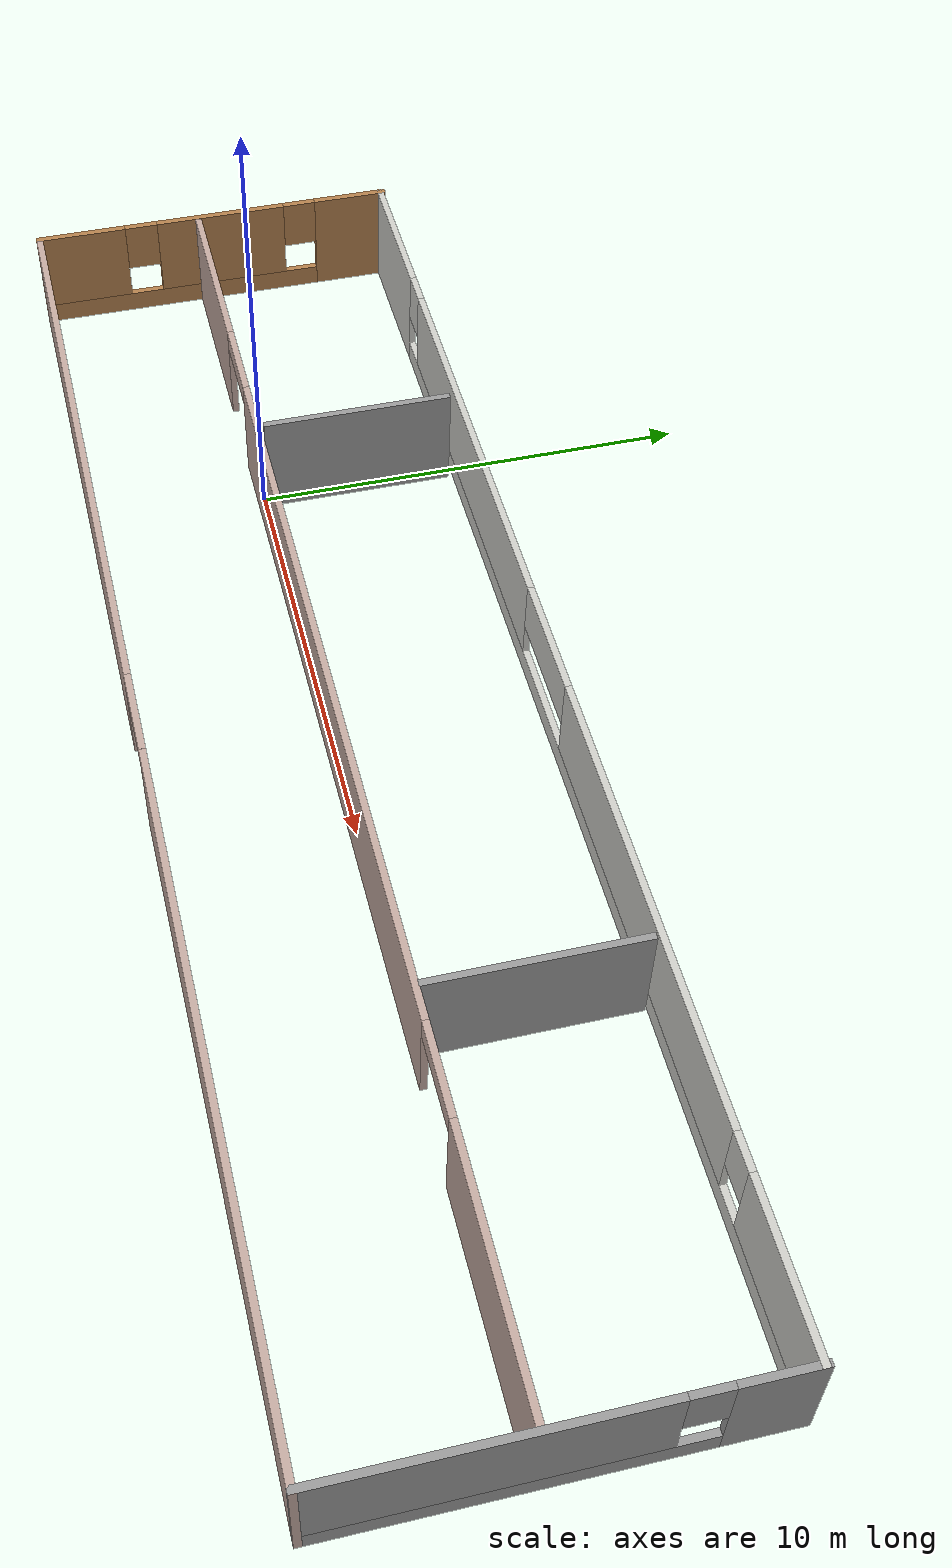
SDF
<?xml version='1.0'?>
<sdf version='1.6'>
  <model name='Building'>
    <pose frame=''>7.965 0.298834 0 0 -0 0</pose>
    <link name='Wall_15'>
      <pose frame=''>-15.675 0 0 0 0 -1.5708</pose>
      <visual name='Wall_15_Visual_0'>
        <pose frame=''>-3.49602 0 1.25 0 -0 0</pose>
        <geometry>
          <box>
            <size>1.83376 0.15 2.5</size>
          </box>
        </geometry>
        <material>
          <script>
            <uri>file://media/materials/scripts/gazebo.material</uri>
            <name>Gazebo/Wood</name>
          </script>
          <ambient>0.435294 0.796078 0.67451 1</ambient>
        </material>
        <meta>
          <layer>0</layer>
        </meta>
      </visual>
      <collision name='Wall_15_Collision_0'>
        <geometry>
          <box>
            <size>1.83376 0.15 2.5</size>
          </box>
        </geometry>
        <pose frame=''>-3.49602 0 1.25 0 -0 0</pose>
      </collision>
      <visual name='Wall_15_Visual_1'>
        <pose frame=''>0.916879 0 0.25 0 -0 0</pose>
        <geometry>
          <box>
            <size>6.99203 0.15 0.5</size>
          </box>
        </geometry>
        <material>
          <script>
            <uri>file://media/materials/scripts/gazebo.material</uri>
            <name>Gazebo/Wood</name>
          </script>
          <ambient>0.435294 0.796078 0.67451 1</ambient>
        </material>
        <meta>
          <layer>0</layer>
        </meta>
      </visual>
      <collision name='Wall_15_Collision_1'>
        <geometry>
          <box>
            <size>6.99203 0.15 0.5</size>
          </box>
        </geometry>
        <pose frame=''>0.916879 0 0.25 0 -0 0</pose>
      </collision>
      <visual name='Wall_15_Visual_2'>
        <pose frame=''>-0.178609 0 1.5 0 -0 0</pose>
        <geometry>
          <box>
            <size>3.20106 0.15 2</size>
          </box>
        </geometry>
        <material>
          <script>
            <uri>file://media/materials/scripts/gazebo.material</uri>
            <name>Gazebo/Wood</name>
          </script>
          <ambient>0.435294 0.796078 0.67451 1</ambient>
        </material>
        <meta>
          <layer>0</layer>
        </meta>
      </visual>
      <collision name='Wall_15_Collision_2'>
        <geometry>
          <box>
            <size>3.20106 0.15 2</size>
          </box>
        </geometry>
        <pose frame=''>-0.178609 0 1.5 0 -0 0</pose>
      </collision>
      <visual name='Wall_15_Visual_3'>
        <pose frame=''>3.31741 0 1.5 0 -0 0</pose>
        <geometry>
          <box>
            <size>2.19098 0.15 2</size>
          </box>
        </geometry>
        <material>
          <script>
            <uri>file://media/materials/scripts/gazebo.material</uri>
            <name>Gazebo/Wood</name>
          </script>
          <ambient>0.435294 0.796078 0.67451 1</ambient>
        </material>
        <meta>
          <layer>0</layer>
        </meta>
      </visual>
      <collision name='Wall_15_Collision_3'>
        <geometry>
          <box>
            <size>2.19098 0.15 2</size>
          </box>
        </geometry>
        <pose frame=''>3.31741 0 1.5 0 -0 0</pose>
      </collision>
      <visual name='Wall_15_Visual_4'>
        <pose frame=''>-2.17914 0 1.9 0 -0 0</pose>
        <geometry>
          <box>
            <size>0.8 0.15 1.2</size>
          </box>
        </geometry>
        <material>
          <script>
            <uri>file://media/materials/scripts/gazebo.material</uri>
            <name>Gazebo/Wood</name>
          </script>
          <ambient>0.435294 0.796078 0.67451 1</ambient>
        </material>
        <meta>
          <layer>0</layer>
        </meta>
      </visual>
      <collision name='Wall_15_Collision_4'>
        <geometry>
          <box>
            <size>0.8 0.15 1.2</size>
          </box>
        </geometry>
        <pose frame=''>-2.17914 0 1.9 0 -0 0</pose>
      </collision>
      <visual name='Wall_15_Visual_5'>
        <pose frame=''>1.82192 0 1.9 0 -0 0</pose>
        <geometry>
          <box>
            <size>0.8 0.15 1.2</size>
          </box>
        </geometry>
        <material>
          <script>
            <uri>file://media/materials/scripts/gazebo.material</uri>
            <name>Gazebo/Wood</name>
          </script>
          <ambient>0.435294 0.796078 0.67451 1</ambient>
        </material>
        <meta>
          <layer>0</layer>
        </meta>
      </visual>
      <collision name='Wall_15_Collision_5'>
        <geometry>
          <box>
            <size>0.8 0.15 1.2</size>
          </box>
        </geometry>
        <pose frame=''>1.82192 0 1.9 0 -0 0</pose>
      </collision>
    </link>
    <link name='Wall_17'>
      <pose frame=''>0 4.29131 0 0 -0 0</pose>
      <visual name='Wall_17_Visual_0'>
        <pose frame=''>-13.9417 0 1.25 0 -0 0</pose>
        <geometry>
          <box>
            <size>3.61662 0.15 2.5</size>
          </box>
        </geometry>
        <material>
          <script>
            <uri>file://media/materials/scripts/gazebo.material</uri>
            <name>Gazebo/CeilingTiled</name>
          </script>
          <ambient>0.760784 0.662745 0.627451 1</ambient>
        </material>
        <meta>
          <layer>0</layer>
        </meta>
      </visual>
      <collision name='Wall_17_Collision_0'>
        <geometry>
          <box>
            <size>3.61662 0.15 2.5</size>
          </box>
        </geometry>
        <pose frame=''>-13.9417 0 1.25 0 -0 0</pose>
      </collision>
      <visual name='Wall_17_Visual_1'>
        <pose frame=''>1.80831 0 0.25 0 -0 0</pose>
        <geometry>
          <box>
            <size>27.8834 0.15 0.5</size>
          </box>
        </geometry>
        <material>
          <script>
            <uri>file://media/materials/scripts/gazebo.material</uri>
            <name>Gazebo/CeilingTiled</name>
          </script>
          <ambient>0.760784 0.662745 0.627451 1</ambient>
        </material>
        <meta>
          <layer>0</layer>
        </meta>
      </visual>
      <collision name='Wall_17_Collision_1'>
        <geometry>
          <box>
            <size>27.8834 0.15 0.5</size>
          </box>
        </geometry>
        <pose frame=''>1.80831 0 0.25 0 -0 0</pose>
      </collision>
      <visual name='Wall_17_Visual_2'>
        <pose frame=''>-6.46442 0 1.5 0 -0 0</pose>
        <geometry>
          <box>
            <size>9.73793 0.15 2</size>
          </box>
        </geometry>
        <material>
          <script>
            <uri>file://media/materials/scripts/gazebo.material</uri>
            <name>Gazebo/CeilingTiled</name>
          </script>
          <ambient>0.760784 0.662745 0.627451 1</ambient>
        </material>
        <meta>
          <layer>0</layer>
        </meta>
      </visual>
      <collision name='Wall_17_Collision_2'>
        <geometry>
          <box>
            <size>9.73793 0.15 2</size>
          </box>
        </geometry>
        <pose frame=''>-6.46442 0 1.5 0 -0 0</pose>
      </collision>
      <visual name='Wall_17_Visual_3'>
        <pose frame=''>6.3294 0 1.5 0 -0 0</pose>
        <geometry>
          <box>
            <size>10.2497 0.15 2</size>
          </box>
        </geometry>
        <material>
          <script>
            <uri>file://media/materials/scripts/gazebo.material</uri>
            <name>Gazebo/CeilingTiled</name>
          </script>
          <ambient>0.760784 0.662745 0.627451 1</ambient>
        </material>
        <meta>
          <layer>0</layer>
        </meta>
      </visual>
      <collision name='Wall_17_Collision_3'>
        <geometry>
          <box>
            <size>10.2497 0.15 2</size>
          </box>
        </geometry>
        <pose frame=''>6.3294 0 1.5 0 -0 0</pose>
      </collision>
      <visual name='Wall_17_Visual_4'>
        <pose frame=''>14.0021 0 1.5 0 -0 0</pose>
        <geometry>
          <box>
            <size>3.49576 0.15 2</size>
          </box>
        </geometry>
        <material>
          <script>
            <uri>file://media/materials/scripts/gazebo.material</uri>
            <name>Gazebo/CeilingTiled</name>
          </script>
          <ambient>0.760784 0.662745 0.627451 1</ambient>
        </material>
        <meta>
          <layer>0</layer>
        </meta>
      </visual>
      <collision name='Wall_17_Collision_4'>
        <geometry>
          <box>
            <size>3.49576 0.15 2</size>
          </box>
        </geometry>
        <pose frame=''>14.0021 0 1.5 0 -0 0</pose>
      </collision>
      <visual name='Wall_17_Visual_5'>
        <pose frame=''>-11.7334 0 1.9 0 -0 0</pose>
        <geometry>
          <box>
            <size>0.8 0.15 1.2</size>
          </box>
        </geometry>
        <material>
          <script>
            <uri>file://media/materials/scripts/gazebo.material</uri>
            <name>Gazebo/CeilingTiled</name>
          </script>
          <ambient>0.760784 0.662745 0.627451 1</ambient>
        </material>
        <meta>
          <layer>0</layer>
        </meta>
      </visual>
      <collision name='Wall_17_Collision_5'>
        <geometry>
          <box>
            <size>0.8 0.15 1.2</size>
          </box>
        </geometry>
        <pose frame=''>-11.7334 0 1.9 0 -0 0</pose>
      </collision>
      <visual name='Wall_17_Visual_6'>
        <pose frame=''>-0.19545 0 1.9 0 -0 0</pose>
        <geometry>
          <box>
            <size>2.8 0.15 1.2</size>
          </box>
        </geometry>
        <material>
          <script>
            <uri>file://media/materials/scripts/gazebo.material</uri>
            <name>Gazebo/CeilingTiled</name>
          </script>
          <ambient>0.760784 0.662745 0.627451 1</ambient>
        </material>
        <meta>
          <layer>0</layer>
        </meta>
      </visual>
      <collision name='Wall_17_Collision_6'>
        <geometry>
          <box>
            <size>2.8 0.15 1.2</size>
          </box>
        </geometry>
        <pose frame=''>-0.19545 0 1.9 0 -0 0</pose>
      </collision>
      <visual name='Wall_17_Visual_7'>
        <pose frame=''>11.8542 0 1.9 0 -0 0</pose>
        <geometry>
          <box>
            <size>0.8 0.15 1.2</size>
          </box>
        </geometry>
        <material>
          <script>
            <uri>file://media/materials/scripts/gazebo.material</uri>
            <name>Gazebo/CeilingTiled</name>
          </script>
          <ambient>0.760784 0.662745 0.627451 1</ambient>
        </material>
        <meta>
          <layer>0</layer>
        </meta>
      </visual>
      <collision name='Wall_17_Collision_7'>
        <geometry>
          <box>
            <size>0.8 0.15 1.2</size>
          </box>
        </geometry>
        <pose frame=''>11.8542 0 1.9 0 -0 0</pose>
      </collision>
    </link>
    <link name='Wall_18'>
      <pose frame=''>15.675 0 0 0 0 -1.5708</pose>
      <visual name='Wall_18_Visual_0'>
        <pose frame=''>-3.61233 0 1.25 0 -0 0</pose>
        <geometry>
          <box>
            <size>1.60114 0.15 2.5</size>
          </box>
        </geometry>
        <material>
          <script>
            <uri>file://media/materials/scripts/gazebo.material</uri>
            <name>Gazebo/Grey</name>
          </script>
          <ambient>1 1 1 1</ambient>
        </material>
        <meta>
          <layer>0</layer>
        </meta>
      </visual>
      <collision name='Wall_18_Collision_0'>
        <geometry>
          <box>
            <size>1.60114 0.15 2.5</size>
          </box>
        </geometry>
        <pose frame=''>-3.61233 0 1.25 0 -0 0</pose>
      </collision>
      <visual name='Wall_18_Visual_1'>
        <pose frame=''>0.80057 0 0.25 0 -0 0</pose>
        <geometry>
          <box>
            <size>7.22465 0.15 0.5</size>
          </box>
        </geometry>
        <material>
          <script>
            <uri>file://media/materials/scripts/gazebo.material</uri>
            <name>Gazebo/Grey</name>
          </script>
          <ambient>1 1 1 1</ambient>
        </material>
        <meta>
          <layer>0</layer>
        </meta>
      </visual>
      <collision name='Wall_18_Collision_1'>
        <geometry>
          <box>
            <size>7.22465 0.15 0.5</size>
          </box>
        </geometry>
        <pose frame=''>0.80057 0 0.25 0 -0 0</pose>
      </collision>
      <visual name='Wall_18_Visual_2'>
        <pose frame=''>1.20057 0 1.5 0 -0 0</pose>
        <geometry>
          <box>
            <size>6.42465 0.15 2</size>
          </box>
        </geometry>
        <material>
          <script>
            <uri>file://media/materials/scripts/gazebo.material</uri>
            <name>Gazebo/Grey</name>
          </script>
          <ambient>1 1 1 1</ambient>
        </material>
        <meta>
          <layer>0</layer>
        </meta>
      </visual>
      <collision name='Wall_18_Collision_2'>
        <geometry>
          <box>
            <size>6.42465 0.15 2</size>
          </box>
        </geometry>
        <pose frame=''>1.20057 0 1.5 0 -0 0</pose>
      </collision>
      <visual name='Wall_18_Visual_3'>
        <pose frame=''>-2.41176 0 1.9 0 -0 0</pose>
        <geometry>
          <box>
            <size>0.8 0.15 1.2</size>
          </box>
        </geometry>
        <material>
          <script>
            <uri>file://media/materials/scripts/gazebo.material</uri>
            <name>Gazebo/Grey</name>
          </script>
          <ambient>1 1 1 1</ambient>
        </material>
        <meta>
          <layer>0</layer>
        </meta>
      </visual>
      <collision name='Wall_18_Collision_3'>
        <geometry>
          <box>
            <size>0.8 0.15 1.2</size>
          </box>
        </geometry>
        <pose frame=''>-2.41176 0 1.9 0 -0 0</pose>
      </collision>
    </link>
    <link name='Wall_19'>
      <pose frame=''>0 -4.33783 0 0 -0 3.14159</pose>
      <visual name='Wall_19_Visual_0'>
        <pose frame=''>-8.30054 0 1.25 0 -0 0</pose>
        <geometry>
          <box>
            <size>14.8989 0.15 2.5</size>
          </box>
        </geometry>
        <material>
          <script>
            <uri>file://media/materials/scripts/gazebo.material</uri>
            <name>Gazebo/Grey</name>
          </script>
          <ambient>0.760784 0.662745 0.627451 1</ambient>
        </material>
        <meta>
          <layer>0</layer>
        </meta>
      </visual>
      <collision name='Wall_19_Collision_0'>
        <geometry>
          <box>
            <size>14.8989 0.15 2.5</size>
          </box>
        </geometry>
        <pose frame=''>-8.30054 0 1.25 0 -0 0</pose>
      </collision>
      <visual name='Wall_19_Visual_1'>
        <pose frame=''>8.44946 0 1.25 0 -0 0</pose>
        <geometry>
          <box>
            <size>14.6011 0.15 2.5</size>
          </box>
        </geometry>
        <material>
          <script>
            <uri>file://media/materials/scripts/gazebo.material</uri>
            <name>Gazebo/Grey</name>
          </script>
          <ambient>0.760784 0.662745 0.627451 1</ambient>
        </material>
        <meta>
          <layer>0</layer>
        </meta>
      </visual>
      <collision name='Wall_19_Collision_1'>
        <geometry>
          <box>
            <size>14.6011 0.15 2.5</size>
          </box>
        </geometry>
        <pose frame=''>8.44946 0 1.25 0 -0 0</pose>
      </collision>
      <visual name='Wall_19_Visual_2'>
        <pose frame=''>0.148926 0 2.25 0 -0 0</pose>
        <geometry>
          <box>
            <size>2 0.15 0.5</size>
          </box>
        </geometry>
        <material>
          <script>
            <uri>file://media/materials/scripts/gazebo.material</uri>
            <name>Gazebo/Grey</name>
          </script>
          <ambient>0.760784 0.662745 0.627451 1</ambient>
        </material>
        <meta>
          <layer>0</layer>
        </meta>
      </visual>
      <collision name='Wall_19_Collision_2'>
        <geometry>
          <box>
            <size>2 0.15 0.5</size>
          </box>
        </geometry>
        <pose frame=''>0.148926 0 2.25 0 -0 0</pose>
      </collision>
    </link>
    <link name='Wall_21'>
      <pose frame=''>0.048183 -0.379678 0 0 -0 0</pose>
      <visual name='Wall_21_Visual_0'>
        <pose frame=''>-13.4206 0 1.25 0 -0 0</pose>
        <geometry>
          <box>
            <size>4.40878 0.15 2.5</size>
          </box>
        </geometry>
        <material>
          <script>
            <uri>file://media/materials/scripts/gazebo.material</uri>
            <name>Gazebo/Grey</name>
          </script>
          <ambient>0.760784 0.662745 0.627451 1</ambient>
        </material>
        <meta>
          <layer>0</layer>
        </meta>
      </visual>
      <collision name='Wall_21_Collision_0'>
        <geometry>
          <box>
            <size>4.40878 0.15 2.5</size>
          </box>
        </geometry>
        <pose frame=''>-13.4206 0 1.25 0 -0 0</pose>
      </collision>
      <visual name='Wall_21_Visual_1'>
        <pose frame=''>-0.574139 0 1.25 0 -0 0</pose>
        <geometry>
          <box>
            <size>17.2842 0.15 2.5</size>
          </box>
        </geometry>
        <material>
          <script>
            <uri>file://media/materials/scripts/gazebo.material</uri>
            <name>Gazebo/Grey</name>
          </script>
          <ambient>0.760784 0.662745 0.627451 1</ambient>
        </material>
        <meta>
          <layer>0</layer>
        </meta>
      </visual>
      <collision name='Wall_21_Collision_1'>
        <geometry>
          <box>
            <size>17.2842 0.15 2.5</size>
          </box>
        </geometry>
        <pose frame=''>-0.574139 0 1.25 0 -0 0</pose>
      </collision>
      <visual name='Wall_21_Visual_2'>
        <pose frame=''>12.8465 0 1.25 0 -0 0</pose>
        <geometry>
          <box>
            <size>5.55706 0.15 2.5</size>
          </box>
        </geometry>
        <material>
          <script>
            <uri>file://media/materials/scripts/gazebo.material</uri>
            <name>Gazebo/Grey</name>
          </script>
          <ambient>0.760784 0.662745 0.627451 1</ambient>
        </material>
        <meta>
          <layer>0</layer>
        </meta>
      </visual>
      <collision name='Wall_21_Collision_2'>
        <geometry>
          <box>
            <size>5.55706 0.15 2.5</size>
          </box>
        </geometry>
        <pose frame=''>12.8465 0 1.25 0 -0 0</pose>
      </collision>
      <visual name='Wall_21_Visual_3'>
        <pose frame=''>-10.2162 0 2.25 0 -0 0</pose>
        <geometry>
          <box>
            <size>2 0.15 0.5</size>
          </box>
        </geometry>
        <material>
          <script>
            <uri>file://media/materials/scripts/gazebo.material</uri>
            <name>Gazebo/Grey</name>
          </script>
          <ambient>0.760784 0.662745 0.627451 1</ambient>
        </material>
        <meta>
          <layer>0</layer>
        </meta>
      </visual>
      <collision name='Wall_21_Collision_3'>
        <geometry>
          <box>
            <size>2 0.15 0.5</size>
          </box>
        </geometry>
        <pose frame=''>-10.2162 0 2.25 0 -0 0</pose>
      </collision>
      <visual name='Wall_21_Visual_4'>
        <pose frame=''>9.06794 0 2.25 0 -0 0</pose>
        <geometry>
          <box>
            <size>2 0.15 0.5</size>
          </box>
        </geometry>
        <material>
          <script>
            <uri>file://media/materials/scripts/gazebo.material</uri>
            <name>Gazebo/Grey</name>
          </script>
          <ambient>0.760784 0.662745 0.627451 1</ambient>
        </material>
        <meta>
          <layer>0</layer>
        </meta>
      </visual>
      <collision name='Wall_21_Collision_4'>
        <geometry>
          <box>
            <size>2 0.15 0.5</size>
          </box>
        </geometry>
        <pose frame=''>9.06794 0 2.25 0 -0 0</pose>
      </collision>
    </link>
    <link name='Wall_23'>
      <collision name='Wall_23_Collision'>
        <geometry>
          <box>
            <size>4.35 0.15 2.5</size>
          </box>
        </geometry>
        <pose frame=''>0 0 1.25 0 -0 0</pose>
      </collision>
      <visual name='Wall_23_Visual'>
        <pose frame=''>0 0 1.25 0 -0 0</pose>
        <geometry>
          <box>
            <size>4.35 0.15 2.5</size>
          </box>
        </geometry>
        <material>
          <script>
            <uri>file://media/materials/scripts/gazebo.material</uri>
            <name>Gazebo/Grey</name>
          </script>
          <ambient>1 1 1 1</ambient>
        </material>
        <meta>
          <layer>0</layer>
        </meta>
      </visual>
      <pose frame=''>-7.82537 1.94009 0 0 0 -1.5708</pose>
    </link>
    <link name='Wall_28'>
      <collision name='Wall_28_Collision'>
        <geometry>
          <box>
            <size>4.5 0.15 2.5</size>
          </box>
        </geometry>
        <pose frame=''>0 0 1.25 0 -0 0</pose>
      </collision>
      <visual name='Wall_28_Visual'>
        <pose frame=''>0 0 1.25 0 -0 0</pose>
        <geometry>
          <box>
            <size>4.5 0.15 2.5</size>
          </box>
        </geometry>
        <material>
          <script>
            <uri>file://media/materials/scripts/gazebo.material</uri>
            <name>Gazebo/Grey</name>
          </script>
          <ambient>1 1 1 1</ambient>
        </material>
        <meta>
          <layer>0</layer>
        </meta>
      </visual>
      <pose frame=''>7.34142 1.929 0 0 0 -1.5708</pose>
    </link>
    <static>1</static>
  </model>
</sdf>
